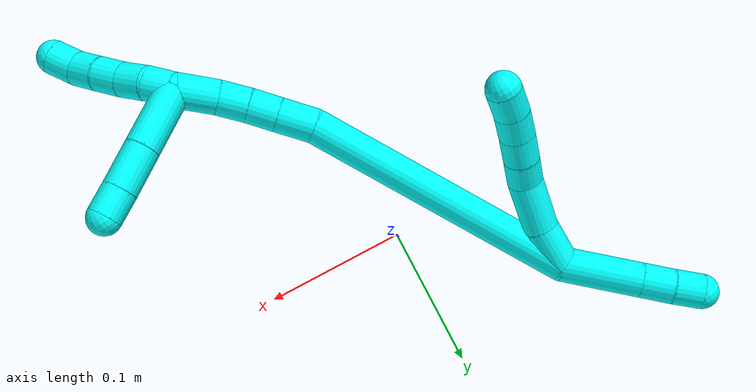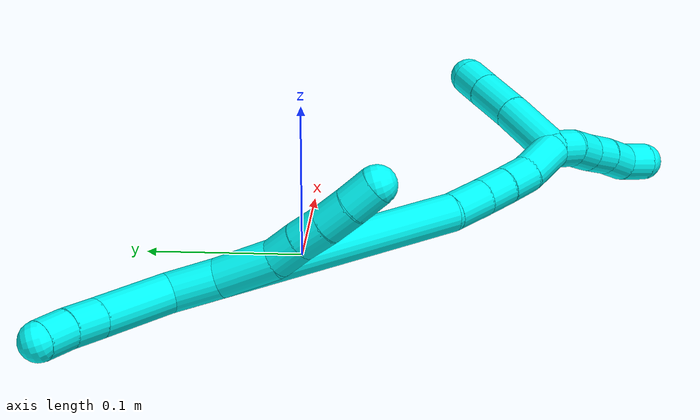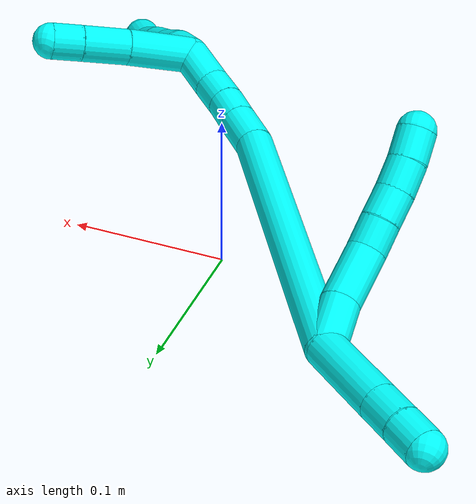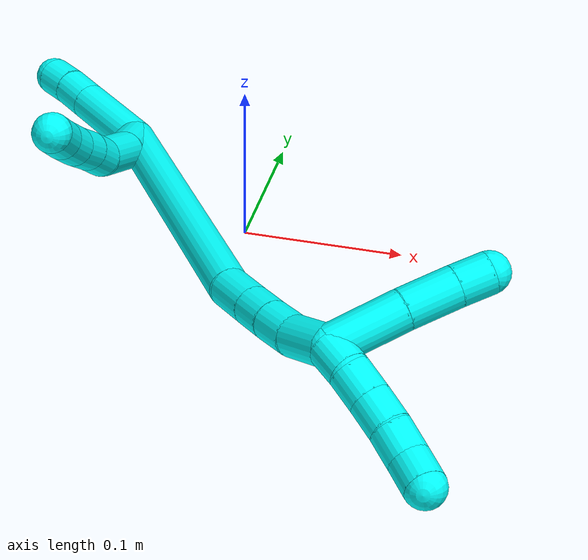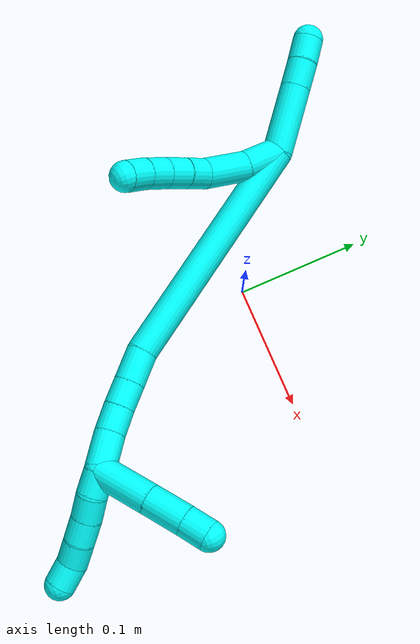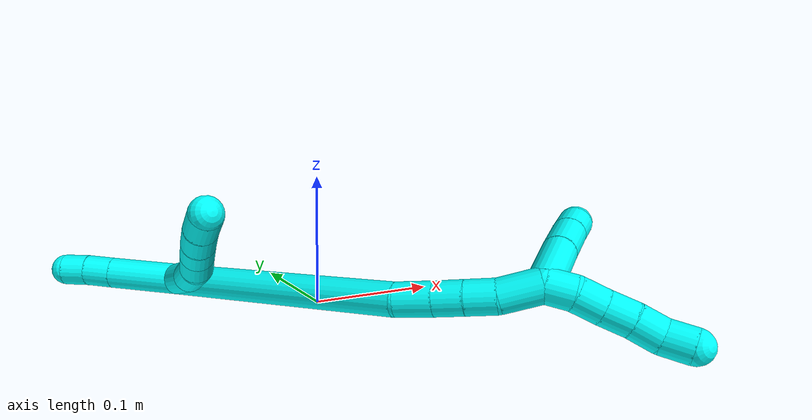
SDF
<sdf version="1.7">
 <world name="default">
  <model name="3">
   <static>0</static>
   <link name="3">
    <collision name="collision-cylinder-e_1_2_8">
     <pose>-0.000276 -6.7e-05 0.016015 0.004168 -0.017213 -3.6e-05</pose>
     <geometry><cylinder><radius>0.0125</radius><length>0.032035</length></cylinder></geometry>
     <surface>
      <friction><ode><mu>1.16</mu><mu2>1.16</mu2><slip1>0</slip1><slip2>0</slip2></ode></friction>
      <contact><ode><kp>1e+06</kp><kd>1</kd><max_vel>0</max_vel><min_depth>0.001</min_depth></ode></contact>
     </surface>
    </collision>
    <visual name="visual-cylinder-e_1_2_8">
     <pose>-0.000276 -6.7e-05 0.016015 0.004168 -0.017213 -3.6e-05</pose>
     <geometry><cylinder><radius>0.0125</radius><length>0.032035</length></cylinder></geometry>
     <material><ambient>0.003922 1 0.996078 1</ambient></material>
    </visual>
    <collision name="collision-cylinder-e_2_8_9">
     <pose>-0.002857 0.002992 0.050608 -0.166678 -0.121778 0.010185</pose>
     <geometry><cylinder><radius>0.0125</radius><length>0.03796</length></cylinder></geometry>
     <surface>
      <friction><ode><mu>1.16</mu><mu2>1.16</mu2><slip1>0</slip1><slip2>0</slip2></ode></friction>
      <contact><ode><kp>1e+06</kp><kd>1</kd><max_vel>0</max_vel><min_depth>0.001</min_depth></ode></contact>
     </surface>
    </collision>
    <visual name="visual-cylinder-e_2_8_9">
     <pose>-0.002857 0.002992 0.050608 -0.166678 -0.121778 0.010185</pose>
     <geometry><cylinder><radius>0.0125</radius><length>0.03796</length></cylinder></geometry>
     <material><ambient>0.003922 1 0.996078 1</ambient></material>
    </visual>
    <collision name="collision-cylinder-e_3_9_10">
     <pose>-0.005532 0.010649 0.078095 -0.470546 -0.036891 0.008844</pose>
     <geometry><cylinder><radius>0.0125</radius><length>0.020003</length></cylinder></geometry>
     <surface>
      <friction><ode><mu>1.16</mu><mu2>1.16</mu2><slip1>0</slip1><slip2>0</slip2></ode></friction>
      <contact><ode><kp>1e+06</kp><kd>1</kd><max_vel>0</max_vel><min_depth>0.001</min_depth></ode></contact>
     </surface>
    </collision>
    <visual name="visual-cylinder-e_3_9_10">
     <pose>-0.005532 0.010649 0.078095 -0.470546 -0.036891 0.008844</pose>
     <geometry><cylinder><radius>0.0125</radius><length>0.020003</length></cylinder></geometry>
     <material><ambient>0.003922 1 0.996078 1</ambient></material>
    </visual>
    <collision name="collision-cylinder-e_4_10_11">
     <pose>-0.006575 0.019217 0.096129 -0.41645 -0.067454 0.014257</pose>
     <geometry><cylinder><radius>0.0125</radius><length>0.020001</length></cylinder></geometry>
     <surface>
      <friction><ode><mu>1.16</mu><mu2>1.16</mu2><slip1>0</slip1><slip2>0</slip2></ode></friction>
      <contact><ode><kp>1e+06</kp><kd>1</kd><max_vel>0</max_vel><min_depth>0.001</min_depth></ode></contact>
     </surface>
    </collision>
    <visual name="visual-cylinder-e_4_10_11">
     <pose>-0.006575 0.019217 0.096129 -0.41645 -0.067454 0.014257</pose>
     <geometry><cylinder><radius>0.0125</radius><length>0.020001</length></cylinder></geometry>
     <material><ambient>0.003922 1 0.996078 1</ambient></material>
    </visual>
    <collision name="collision-cylinder-e_5_11_12">
     <pose>-0.007221 0.027568 0.114275 -0.446139 0.002786 -0.000632</pose>
     <geometry><cylinder><radius>0.0125</radius><length>0.02</length></cylinder></geometry>
     <surface>
      <friction><ode><mu>1.16</mu><mu2>1.16</mu2><slip1>0</slip1><slip2>0</slip2></ode></friction>
      <contact><ode><kp>1e+06</kp><kd>1</kd><max_vel>0</max_vel><min_depth>0.001</min_depth></ode></contact>
     </surface>
    </collision>
    <visual name="visual-cylinder-e_5_11_12">
     <pose>-0.007221 0.027568 0.114275 -0.446139 0.002786 -0.000632</pose>
     <geometry><cylinder><radius>0.0125</radius><length>0.02</length></cylinder></geometry>
     <material><ambient>0.003922 1 0.996078 1</ambient></material>
    </visual>
    <collision name="collision-cylinder-e_6_12_6">
     <pose>-0.006258 0.035856 0.132426 -0.410466 0.093623 -0.019503</pose>
     <geometry><cylinder><radius>0.0125</radius><length>0.02</length></cylinder></geometry>
     <surface>
      <friction><ode><mu>1.16</mu><mu2>1.16</mu2><slip1>0</slip1><slip2>0</slip2></ode></friction>
      <contact><ode><kp>1e+06</kp><kd>1</kd><max_vel>0</max_vel><min_depth>0.001</min_depth></ode></contact>
     </surface>
    </collision>
    <visual name="visual-cylinder-e_6_12_6">
     <pose>-0.006258 0.035856 0.132426 -0.410466 0.093623 -0.019503</pose>
     <geometry><cylinder><radius>0.0125</radius><length>0.02</length></cylinder></geometry>
     <material><ambient>0.003922 1 0.996078 1</ambient></material>
    </visual>
    <collision name="collision-cylinder-e_1_2_13">
     <pose>-0.015497 0.014879 -0.018462 -2.46325 -0.578874 1.40211</pose>
     <geometry><cylinder><radius>0.0125</radius><length>0.056654</length></cylinder></geometry>
     <surface>
      <friction><ode><mu>1.16</mu><mu2>1.16</mu2><slip1>0</slip1><slip2>0</slip2></ode></friction>
      <contact><ode><kp>1e+06</kp><kd>1</kd><max_vel>0</max_vel><min_depth>0.001</min_depth></ode></contact>
     </surface>
    </collision>
    <visual name="visual-cylinder-e_1_2_13">
     <pose>-0.015497 0.014879 -0.018462 -2.46325 -0.578874 1.40211</pose>
     <geometry><cylinder><radius>0.0125</radius><length>0.056654</length></cylinder></geometry>
     <material><ambient>0.003922 1 0.996078 1</ambient></material>
    </visual>
    <collision name="collision-cylinder-e_2_13_14">
     <pose>-0.037165 0.035801 -0.044292 -2.45466 -0.574751 1.38127</pose>
     <geometry><cylinder><radius>0.0125</radius><length>0.022703</length></cylinder></geometry>
     <surface>
      <friction><ode><mu>1.16</mu><mu2>1.16</mu2><slip1>0</slip1><slip2>0</slip2></ode></friction>
      <contact><ode><kp>1e+06</kp><kd>1</kd><max_vel>0</max_vel><min_depth>0.001</min_depth></ode></contact>
     </surface>
    </collision>
    <visual name="visual-cylinder-e_2_13_14">
     <pose>-0.037165 0.035801 -0.044292 -2.45466 -0.574751 1.38127</pose>
     <geometry><cylinder><radius>0.0125</radius><length>0.022703</length></cylinder></geometry>
     <material><ambient>0.003922 1 0.996078 1</ambient></material>
    </visual>
    <collision name="collision-cylinder-e_3_14_5">
     <pose>-0.049433 0.046829 -0.058329 -2.49968 -0.631917 1.55399</pose>
     <geometry><cylinder><radius>0.0125</radius><length>0.020643</length></cylinder></geometry>
     <surface>
      <friction><ode><mu>1.16</mu><mu2>1.16</mu2><slip1>0</slip1><slip2>0</slip2></ode></friction>
      <contact><ode><kp>1e+06</kp><kd>1</kd><max_vel>0</max_vel><min_depth>0.001</min_depth></ode></contact>
     </surface>
    </collision>
    <visual name="visual-cylinder-e_3_14_5">
     <pose>-0.049433 0.046829 -0.058329 -2.49968 -0.631917 1.55399</pose>
     <geometry><cylinder><radius>0.0125</radius><length>0.020643</length></cylinder></geometry>
     <material><ambient>0.003922 1 0.996078 1</ambient></material>
    </visual>
    <collision name="collision-cylinder-e_1_2_15">
     <pose>0.033958 -0.03879 0.085429 0.426225 0.347273 0.075877</pose>
     <geometry><cylinder><radius>0.0125</radius><length>0.199558</length></cylinder></geometry>
     <surface>
      <friction><ode><mu>1.16</mu><mu2>1.16</mu2><slip1>0</slip1><slip2>0</slip2></ode></friction>
      <contact><ode><kp>1e+06</kp><kd>1</kd><max_vel>0</max_vel><min_depth>0.001</min_depth></ode></contact>
     </surface>
    </collision>
    <visual name="visual-cylinder-e_1_2_15">
     <pose>0.033958 -0.03879 0.085429 0.426225 0.347273 0.075877</pose>
     <geometry><cylinder><radius>0.0125</radius><length>0.199558</length></cylinder></geometry>
     <material><ambient>0.003922 1 0.996078 1</ambient></material>
    </visual>
    <collision name="collision-cylinder-e_2_15_16">
     <pose>0.07513 -0.082777 0.181083 0.470232 0.561404 0.13791</pose>
     <geometry><cylinder><radius>0.0125</radius><length>0.027101</length></cylinder></geometry>
     <surface>
      <friction><ode><mu>1.16</mu><mu2>1.16</mu2><slip1>0</slip1><slip2>0</slip2></ode></friction>
      <contact><ode><kp>1e+06</kp><kd>1</kd><max_vel>0</max_vel><min_depth>0.001</min_depth></ode></contact>
     </surface>
    </collision>
    <visual name="visual-cylinder-e_2_15_16">
     <pose>0.07513 -0.082777 0.181083 0.470232 0.561404 0.13791</pose>
     <geometry><cylinder><radius>0.0125</radius><length>0.027101</length></cylinder></geometry>
     <material><ambient>0.003922 1 0.996078 1</ambient></material>
    </visual>
    <collision name="collision-cylinder-e_3_16_17">
     <pose>0.087983 -0.09182 0.1993 0.448584 0.566268 0.132555</pose>
     <geometry><cylinder><radius>0.0125</radius><length>0.021019</length></cylinder></geometry>
     <surface>
      <friction><ode><mu>1.16</mu><mu2>1.16</mu2><slip1>0</slip1><slip2>0</slip2></ode></friction>
      <contact><ode><kp>1e+06</kp><kd>1</kd><max_vel>0</max_vel><min_depth>0.001</min_depth></ode></contact>
     </surface>
    </collision>
    <visual name="visual-cylinder-e_3_16_17">
     <pose>0.087983 -0.09182 0.1993 0.448584 0.566268 0.132555</pose>
     <geometry><cylinder><radius>0.0125</radius><length>0.021019</length></cylinder></geometry>
     <material><ambient>0.003922 1 0.996078 1</ambient></material>
    </visual>
    <collision name="collision-cylinder-e_4_17_18">
     <pose>0.099903 -0.099877 0.215279 0.485136 0.6079 0.154918</pose>
     <geometry><cylinder><radius>0.0125</radius><length>0.021999</length></cylinder></geometry>
     <surface>
      <friction><ode><mu>1.16</mu><mu2>1.16</mu2><slip1>0</slip1><slip2>0</slip2></ode></friction>
      <contact><ode><kp>1e+06</kp><kd>1</kd><max_vel>0</max_vel><min_depth>0.001</min_depth></ode></contact>
     </surface>
    </collision>
    <visual name="visual-cylinder-e_4_17_18">
     <pose>0.099903 -0.099877 0.215279 0.485136 0.6079 0.154918</pose>
     <geometry><cylinder><radius>0.0125</radius><length>0.021999</length></cylinder></geometry>
     <material><ambient>0.003922 1 0.996078 1</ambient></material>
    </visual>
    <collision name="collision-cylinder-e_5_18_1">
     <pose>0.116668 -0.107331 0.233728 0.300625 0.763432 0.121439</pose>
     <geometry><cylinder><radius>0.0125</radius><length>0.030323</length></cylinder></geometry>
     <surface>
      <friction><ode><mu>1.16</mu><mu2>1.16</mu2><slip1>0</slip1><slip2>0</slip2></ode></friction>
      <contact><ode><kp>1e+06</kp><kd>1</kd><max_vel>0</max_vel><min_depth>0.001</min_depth></ode></contact>
     </surface>
    </collision>
    <visual name="visual-cylinder-e_5_18_1">
     <pose>0.116668 -0.107331 0.233728 0.300625 0.763432 0.121439</pose>
     <geometry><cylinder><radius>0.0125</radius><length>0.030323</length></cylinder></geometry>
     <material><ambient>0.003922 1 0.996078 1</ambient></material>
    </visual>
    <collision name="collision-cylinder-e_1_1_19">
     <pose>0.148493 -0.109784 0.234866 -3.05699 1.15756 -3.01222</pose>
     <geometry><cylinder><radius>0.0125</radius><length>0.046608</length></cylinder></geometry>
     <surface>
      <friction><ode><mu>1.16</mu><mu2>1.16</mu2><slip1>0</slip1><slip2>0</slip2></ode></friction>
      <contact><ode><kp>1e+06</kp><kd>1</kd><max_vel>0</max_vel><min_depth>0.001</min_depth></ode></contact>
     </surface>
    </collision>
    <visual name="visual-cylinder-e_1_1_19">
     <pose>0.148493 -0.109784 0.234866 -3.05699 1.15756 -3.01222</pose>
     <geometry><cylinder><radius>0.0125</radius><length>0.046608</length></cylinder></geometry>
     <material><ambient>0.003922 1 0.996078 1</ambient></material>
    </visual>
    <collision name="collision-cylinder-e_2_19_20">
     <pose>0.184546 -0.109188 0.218821 3.1126 1.14214 3.09648</pose>
     <geometry><cylinder><radius>0.0125</radius><length>0.032348</length></cylinder></geometry>
     <surface>
      <friction><ode><mu>1.16</mu><mu2>1.16</mu2><slip1>0</slip1><slip2>0</slip2></ode></friction>
      <contact><ode><kp>1e+06</kp><kd>1</kd><max_vel>0</max_vel><min_depth>0.001</min_depth></ode></contact>
     </surface>
    </collision>
    <visual name="visual-cylinder-e_2_19_20">
     <pose>0.184546 -0.109188 0.218821 3.1126 1.14214 3.09648</pose>
     <geometry><cylinder><radius>0.0125</radius><length>0.032348</length></cylinder></geometry>
     <material><ambient>0.003922 1 0.996078 1</ambient></material>
    </visual>
    <collision name="collision-cylinder-e_3_20_4">
     <pose>0.208875 -0.109809 0.207856 3.04156 1.15331 2.98796</pose>
     <geometry><cylinder><radius>0.0125</radius><length>0.021044</length></cylinder></geometry>
     <surface>
      <friction><ode><mu>1.16</mu><mu2>1.16</mu2><slip1>0</slip1><slip2>0</slip2></ode></friction>
      <contact><ode><kp>1e+06</kp><kd>1</kd><max_vel>0</max_vel><min_depth>0.001</min_depth></ode></contact>
     </surface>
    </collision>
    <visual name="visual-cylinder-e_3_20_4">
     <pose>0.208875 -0.109809 0.207856 3.04156 1.15331 2.98796</pose>
     <geometry><cylinder><radius>0.0125</radius><length>0.021044</length></cylinder></geometry>
     <material><ambient>0.003922 1 0.996078 1</ambient></material>
    </visual>
    <collision name="collision-cylinder-e_1_1_21">
     <pose>0.131468 -0.117116 0.250401 0.811388 0.446428 0.194385</pose>
     <geometry><cylinder><radius>0.0125</radius><length>0.02</length></cylinder></geometry>
     <surface>
      <friction><ode><mu>1.16</mu><mu2>1.16</mu2><slip1>0</slip1><slip2>0</slip2></ode></friction>
      <contact><ode><kp>1e+06</kp><kd>1</kd><max_vel>0</max_vel><min_depth>0.001</min_depth></ode></contact>
     </surface>
    </collision>
    <visual name="visual-cylinder-e_1_1_21">
     <pose>0.131468 -0.117116 0.250401 0.811388 0.446428 0.194385</pose>
     <geometry><cylinder><radius>0.0125</radius><length>0.02</length></cylinder></geometry>
     <material><ambient>0.003922 1 0.996078 1</ambient></material>
    </visual>
    <collision name="collision-cylinder-e_2_21_22">
     <pose>0.13934 -0.131751 0.261289 1.04671 0.363298 0.211182</pose>
     <geometry><cylinder><radius>0.0125</radius><length>0.02</length></cylinder></geometry>
     <surface>
      <friction><ode><mu>1.16</mu><mu2>1.16</mu2><slip1>0</slip1><slip2>0</slip2></ode></friction>
      <contact><ode><kp>1e+06</kp><kd>1</kd><max_vel>0</max_vel><min_depth>0.001</min_depth></ode></contact>
     </surface>
    </collision>
    <visual name="visual-cylinder-e_2_21_22">
     <pose>0.13934 -0.131751 0.261289 1.04671 0.363298 0.211182</pose>
     <geometry><cylinder><radius>0.0125</radius><length>0.02</length></cylinder></geometry>
     <material><ambient>0.003922 1 0.996078 1</ambient></material>
    </visual>
    <collision name="collision-cylinder-e_3_22_23">
     <pose>0.146305 -0.147486 0.271438 0.949409 0.34817 0.180264</pose>
     <geometry><cylinder><radius>0.0125</radius><length>0.02</length></cylinder></geometry>
     <surface>
      <friction><ode><mu>1.16</mu><mu2>1.16</mu2><slip1>0</slip1><slip2>0</slip2></ode></friction>
      <contact><ode><kp>1e+06</kp><kd>1</kd><max_vel>0</max_vel><min_depth>0.001</min_depth></ode></contact>
     </surface>
    </collision>
    <visual name="visual-cylinder-e_3_22_23">
     <pose>0.146305 -0.147486 0.271438 0.949409 0.34817 0.180264</pose>
     <geometry><cylinder><radius>0.0125</radius><length>0.02</length></cylinder></geometry>
     <material><ambient>0.003922 1 0.996078 1</ambient></material>
    </visual>
    <collision name="collision-cylinder-e_4_23_24">
     <pose>0.152466 -0.163348 0.281899 1.0253 0.278561 0.157482</pose>
     <geometry><cylinder><radius>0.0125</radius><length>0.02</length></cylinder></geometry>
     <surface>
      <friction><ode><mu>1.16</mu><mu2>1.16</mu2><slip1>0</slip1><slip2>0</slip2></ode></friction>
      <contact><ode><kp>1e+06</kp><kd>1</kd><max_vel>0</max_vel><min_depth>0.001</min_depth></ode></contact>
     </surface>
    </collision>
    <visual name="visual-cylinder-e_4_23_24">
     <pose>0.152466 -0.163348 0.281899 1.0253 0.278561 0.157482</pose>
     <geometry><cylinder><radius>0.0125</radius><length>0.02</length></cylinder></geometry>
     <material><ambient>0.003922 1 0.996078 1</ambient></material>
    </visual>
    <collision name="collision-cylinder-e_5_24_3">
     <pose>0.158143 -0.177716 0.294211 0.698389 0.297084 0.108868</pose>
     <geometry><cylinder><radius>0.0125</radius><length>0.02</length></cylinder></geometry>
     <surface>
      <friction><ode><mu>1.16</mu><mu2>1.16</mu2><slip1>0</slip1><slip2>0</slip2></ode></friction>
      <contact><ode><kp>1e+06</kp><kd>1</kd><max_vel>0</max_vel><min_depth>0.001</min_depth></ode></contact>
     </surface>
    </collision>
    <visual name="visual-cylinder-e_5_24_3">
     <pose>0.158143 -0.177716 0.294211 0.698389 0.297084 0.108868</pose>
     <geometry><cylinder><radius>0.0125</radius><length>0.02</length></cylinder></geometry>
     <material><ambient>0.003922 1 0.996078 1</ambient></material>
    </visual>
    <collision name="collision-sphere-3">
     <pose>0.161071 -0.183864 0.301534 0 -0 0</pose>
     <geometry><sphere><radius>0.0125</radius></sphere></geometry>
     <surface>
      <friction><ode><mu>1.16</mu><mu2>1.16</mu2><slip1>0</slip1><slip2>0</slip2></ode></friction>
      <contact><ode><kp>1e+06</kp><kd>1</kd><max_vel>0</max_vel><min_depth>0.001</min_depth></ode></contact>
     </surface>
    </collision>
    <visual name="visual-sphere-3">
     <pose>0.161071 -0.183864 0.301534 0 -0 0</pose>
     <geometry><sphere><radius>0.0125</radius></sphere></geometry>
     <material><ambient>0.003922 1 0.996078 1</ambient></material>
    </visual>
    <collision name="collision-sphere-24">
     <pose>0.155216 -0.171568 0.286888 0 -0 0</pose>
     <geometry><sphere><radius>0.0125</radius></sphere></geometry>
     <surface>
      <friction><ode><mu>1.16</mu><mu2>1.16</mu2><slip1>0</slip1><slip2>0</slip2></ode></friction>
      <contact><ode><kp>1e+06</kp><kd>1</kd><max_vel>0</max_vel><min_depth>0.001</min_depth></ode></contact>
     </surface>
    </collision>
    <visual name="visual-sphere-24">
     <pose>0.155216 -0.171568 0.286888 0 -0 0</pose>
     <geometry><sphere><radius>0.0125</radius></sphere></geometry>
     <material><ambient>0.003922 1 0.996078 1</ambient></material>
    </visual>
    <collision name="collision-sphere-23">
     <pose>0.149717 -0.155129 0.276911 0 -0 0</pose>
     <geometry><sphere><radius>0.0125</radius></sphere></geometry>
     <surface>
      <friction><ode><mu>1.16</mu><mu2>1.16</mu2><slip1>0</slip1><slip2>0</slip2></ode></friction>
      <contact><ode><kp>1e+06</kp><kd>1</kd><max_vel>0</max_vel><min_depth>0.001</min_depth></ode></contact>
     </surface>
    </collision>
    <visual name="visual-sphere-23">
     <pose>0.149717 -0.155129 0.276911 0 -0 0</pose>
     <geometry><sphere><radius>0.0125</radius></sphere></geometry>
     <material><ambient>0.003922 1 0.996078 1</ambient></material>
    </visual>
    <collision name="collision-sphere-22">
     <pose>0.142893 -0.139843 0.265966 0 -0 0</pose>
     <geometry><sphere><radius>0.0125</radius></sphere></geometry>
     <surface>
      <friction><ode><mu>1.16</mu><mu2>1.16</mu2><slip1>0</slip1><slip2>0</slip2></ode></friction>
      <contact><ode><kp>1e+06</kp><kd>1</kd><max_vel>0</max_vel><min_depth>0.001</min_depth></ode></contact>
     </surface>
    </collision>
    <visual name="visual-sphere-22">
     <pose>0.142893 -0.139843 0.265966 0 -0 0</pose>
     <geometry><sphere><radius>0.0125</radius></sphere></geometry>
     <material><ambient>0.003922 1 0.996078 1</ambient></material>
    </visual>
    <collision name="collision-sphere-21">
     <pose>0.135786 -0.123658 0.256611 0 -0 0</pose>
     <geometry><sphere><radius>0.0125</radius></sphere></geometry>
     <surface>
      <friction><ode><mu>1.16</mu><mu2>1.16</mu2><slip1>0</slip1><slip2>0</slip2></ode></friction>
      <contact><ode><kp>1e+06</kp><kd>1</kd><max_vel>0</max_vel><min_depth>0.001</min_depth></ode></contact>
     </surface>
    </collision>
    <visual name="visual-sphere-21">
     <pose>0.135786 -0.123658 0.256611 0 -0 0</pose>
     <geometry><sphere><radius>0.0125</radius></sphere></geometry>
     <material><ambient>0.003922 1 0.996078 1</ambient></material>
    </visual>
    <collision name="collision-sphere-4">
     <pose>0.218494 -0.110235 0.203611 0 -0 0</pose>
     <geometry><sphere><radius>0.0125</radius></sphere></geometry>
     <surface>
      <friction><ode><mu>1.16</mu><mu2>1.16</mu2><slip1>0</slip1><slip2>0</slip2></ode></friction>
      <contact><ode><kp>1e+06</kp><kd>1</kd><max_vel>0</max_vel><min_depth>0.001</min_depth></ode></contact>
     </surface>
    </collision>
    <visual name="visual-sphere-4">
     <pose>0.218494 -0.110235 0.203611 0 -0 0</pose>
     <geometry><sphere><radius>0.0125</radius></sphere></geometry>
     <material><ambient>0.003922 1 0.996078 1</ambient></material>
    </visual>
    <collision name="collision-sphere-20">
     <pose>0.199257 -0.109383 0.212101 0 -0 0</pose>
     <geometry><sphere><radius>0.0125</radius></sphere></geometry>
     <surface>
      <friction><ode><mu>1.16</mu><mu2>1.16</mu2><slip1>0</slip1><slip2>0</slip2></ode></friction>
      <contact><ode><kp>1e+06</kp><kd>1</kd><max_vel>0</max_vel><min_depth>0.001</min_depth></ode></contact>
     </surface>
    </collision>
    <visual name="visual-sphere-20">
     <pose>0.199257 -0.109383 0.212101 0 -0 0</pose>
     <geometry><sphere><radius>0.0125</radius></sphere></geometry>
     <material><ambient>0.003922 1 0.996078 1</ambient></material>
    </visual>
    <collision name="collision-sphere-12">
     <pose>-0.007193 0.031883 0.123297 0 -0 0</pose>
     <geometry><sphere><radius>0.0125</radius></sphere></geometry>
     <surface>
      <friction><ode><mu>1.16</mu><mu2>1.16</mu2><slip1>0</slip1><slip2>0</slip2></ode></friction>
      <contact><ode><kp>1e+06</kp><kd>1</kd><max_vel>0</max_vel><min_depth>0.001</min_depth></ode></contact>
     </surface>
    </collision>
    <visual name="visual-sphere-12">
     <pose>-0.007193 0.031883 0.123297 0 -0 0</pose>
     <geometry><sphere><radius>0.0125</radius></sphere></geometry>
     <material><ambient>0.003922 1 0.996078 1</ambient></material>
    </visual>
    <collision name="collision-sphere-11">
     <pose>-0.007249 0.023253 0.105254 0 -0 0</pose>
     <geometry><sphere><radius>0.0125</radius></sphere></geometry>
     <surface>
      <friction><ode><mu>1.16</mu><mu2>1.16</mu2><slip1>0</slip1><slip2>0</slip2></ode></friction>
      <contact><ode><kp>1e+06</kp><kd>1</kd><max_vel>0</max_vel><min_depth>0.001</min_depth></ode></contact>
     </surface>
    </collision>
    <visual name="visual-sphere-11">
     <pose>-0.007249 0.023253 0.105254 0 -0 0</pose>
     <geometry><sphere><radius>0.0125</radius></sphere></geometry>
     <material><ambient>0.003922 1 0.996078 1</ambient></material>
    </visual>
    <collision name="collision-sphere-10">
     <pose>-0.0059 0.015181 0.087004 0 -0 0</pose>
     <geometry><sphere><radius>0.0125</radius></sphere></geometry>
     <surface>
      <friction><ode><mu>1.16</mu><mu2>1.16</mu2><slip1>0</slip1><slip2>0</slip2></ode></friction>
      <contact><ode><kp>1e+06</kp><kd>1</kd><max_vel>0</max_vel><min_depth>0.001</min_depth></ode></contact>
     </surface>
    </collision>
    <visual name="visual-sphere-10">
     <pose>-0.0059 0.015181 0.087004 0 -0 0</pose>
     <geometry><sphere><radius>0.0125</radius></sphere></geometry>
     <material><ambient>0.003922 1 0.996078 1</ambient></material>
    </visual>
    <collision name="collision-sphere-9">
     <pose>-0.005163 0.006118 0.069187 0 -0 0</pose>
     <geometry><sphere><radius>0.0125</radius></sphere></geometry>
     <surface>
      <friction><ode><mu>1.16</mu><mu2>1.16</mu2><slip1>0</slip1><slip2>0</slip2></ode></friction>
      <contact><ode><kp>1e+06</kp><kd>1</kd><max_vel>0</max_vel><min_depth>0.001</min_depth></ode></contact>
     </surface>
    </collision>
    <visual name="visual-sphere-9">
     <pose>-0.005163 0.006118 0.069187 0 -0 0</pose>
     <geometry><sphere><radius>0.0125</radius></sphere></geometry>
     <material><ambient>0.003922 1 0.996078 1</ambient></material>
    </visual>
    <collision name="collision-sphere-2">
     <geometry><sphere><radius>0.0125</radius></sphere></geometry>
     <surface>
      <friction><ode><mu>1.16</mu><mu2>1.16</mu2><slip1>0</slip1><slip2>0</slip2></ode></friction>
      <contact><ode><kp>1e+06</kp><kd>1</kd><max_vel>0</max_vel><min_depth>0.001</min_depth></ode></contact>
     </surface>
    </collision>
    <visual name="visual-sphere-2">
     <geometry><sphere><radius>0.0125</radius></sphere></geometry>
     <material><ambient>0.003922 1 0.996078 1</ambient></material>
    </visual>
    <collision name="collision-sphere-19">
     <pose>0.169836 -0.108993 0.225541 0 -0 0</pose>
     <geometry><sphere><radius>0.0125</radius></sphere></geometry>
     <surface>
      <friction><ode><mu>1.16</mu><mu2>1.16</mu2><slip1>0</slip1><slip2>0</slip2></ode></friction>
      <contact><ode><kp>1e+06</kp><kd>1</kd><max_vel>0</max_vel><min_depth>0.001</min_depth></ode></contact>
     </surface>
    </collision>
    <visual name="visual-sphere-19">
     <pose>0.169836 -0.108993 0.225541 0 -0 0</pose>
     <geometry><sphere><radius>0.0125</radius></sphere></geometry>
     <material><ambient>0.003922 1 0.996078 1</ambient></material>
    </visual>
    <collision name="collision-sphere-8">
     <pose>-0.000551 -0.000133 0.03203 0 -0 0</pose>
     <geometry><sphere><radius>0.0125</radius></sphere></geometry>
     <surface>
      <friction><ode><mu>1.16</mu><mu2>1.16</mu2><slip1>0</slip1><slip2>0</slip2></ode></friction>
      <contact><ode><kp>1e+06</kp><kd>1</kd><max_vel>0</max_vel><min_depth>0.001</min_depth></ode></contact>
     </surface>
    </collision>
    <visual name="visual-sphere-8">
     <pose>-0.000551 -0.000133 0.03203 0 -0 0</pose>
     <geometry><sphere><radius>0.0125</radius></sphere></geometry>
     <material><ambient>0.003922 1 0.996078 1</ambient></material>
    </visual>
    <collision name="collision-sphere-6">
     <pose>-0.005323 0.039829 0.141555 0 -0 0</pose>
     <geometry><sphere><radius>0.0125</radius></sphere></geometry>
     <surface>
      <friction><ode><mu>1.16</mu><mu2>1.16</mu2><slip1>0</slip1><slip2>0</slip2></ode></friction>
      <contact><ode><kp>1e+06</kp><kd>1</kd><max_vel>0</max_vel><min_depth>0.001</min_depth></ode></contact>
     </surface>
    </collision>
    <visual name="visual-sphere-6">
     <pose>-0.005323 0.039829 0.141555 0 -0 0</pose>
     <geometry><sphere><radius>0.0125</radius></sphere></geometry>
     <material><ambient>0.003922 1 0.996078 1</ambient></material>
    </visual>
    <collision name="collision-sphere-13">
     <pose>-0.030994 0.029759 -0.036925 0 -0 0</pose>
     <geometry><sphere><radius>0.0125</radius></sphere></geometry>
     <surface>
      <friction><ode><mu>1.16</mu><mu2>1.16</mu2><slip1>0</slip1><slip2>0</slip2></ode></friction>
      <contact><ode><kp>1e+06</kp><kd>1</kd><max_vel>0</max_vel><min_depth>0.001</min_depth></ode></contact>
     </surface>
    </collision>
    <visual name="visual-sphere-13">
     <pose>-0.030994 0.029759 -0.036925 0 -0 0</pose>
     <geometry><sphere><radius>0.0125</radius></sphere></geometry>
     <material><ambient>0.003922 1 0.996078 1</ambient></material>
    </visual>
    <collision name="collision-sphere-14">
     <pose>-0.043336 0.041843 -0.051658 0 -0 0</pose>
     <geometry><sphere><radius>0.0125</radius></sphere></geometry>
     <surface>
      <friction><ode><mu>1.16</mu><mu2>1.16</mu2><slip1>0</slip1><slip2>0</slip2></ode></friction>
      <contact><ode><kp>1e+06</kp><kd>1</kd><max_vel>0</max_vel><min_depth>0.001</min_depth></ode></contact>
     </surface>
    </collision>
    <visual name="visual-sphere-14">
     <pose>-0.043336 0.041843 -0.051658 0 -0 0</pose>
     <geometry><sphere><radius>0.0125</radius></sphere></geometry>
     <material><ambient>0.003922 1 0.996078 1</ambient></material>
    </visual>
    <collision name="collision-sphere-5">
     <pose>-0.05553 0.051816 -0.065 0 -0 0</pose>
     <geometry><sphere><radius>0.0125</radius></sphere></geometry>
     <surface>
      <friction><ode><mu>1.16</mu><mu2>1.16</mu2><slip1>0</slip1><slip2>0</slip2></ode></friction>
      <contact><ode><kp>1e+06</kp><kd>1</kd><max_vel>0</max_vel><min_depth>0.001</min_depth></ode></contact>
     </surface>
    </collision>
    <visual name="visual-sphere-5">
     <pose>-0.05553 0.051816 -0.065 0 -0 0</pose>
     <geometry><sphere><radius>0.0125</radius></sphere></geometry>
     <material><ambient>0.003922 1 0.996078 1</ambient></material>
    </visual>
    <collision name="collision-sphere-15">
     <pose>0.067916 -0.077579 0.170857 0 -0 0</pose>
     <geometry><sphere><radius>0.0125</radius></sphere></geometry>
     <surface>
      <friction><ode><mu>1.16</mu><mu2>1.16</mu2><slip1>0</slip1><slip2>0</slip2></ode></friction>
      <contact><ode><kp>1e+06</kp><kd>1</kd><max_vel>0</max_vel><min_depth>0.001</min_depth></ode></contact>
     </surface>
    </collision>
    <visual name="visual-sphere-15">
     <pose>0.067916 -0.077579 0.170857 0 -0 0</pose>
     <geometry><sphere><radius>0.0125</radius></sphere></geometry>
     <material><ambient>0.003922 1 0.996078 1</ambient></material>
    </visual>
    <collision name="collision-sphere-16">
     <pose>0.082345 -0.087974 0.191309 0 -0 0</pose>
     <geometry><sphere><radius>0.0125</radius></sphere></geometry>
     <surface>
      <friction><ode><mu>1.16</mu><mu2>1.16</mu2><slip1>0</slip1><slip2>0</slip2></ode></friction>
      <contact><ode><kp>1e+06</kp><kd>1</kd><max_vel>0</max_vel><min_depth>0.001</min_depth></ode></contact>
     </surface>
    </collision>
    <visual name="visual-sphere-16">
     <pose>0.082345 -0.087974 0.191309 0 -0 0</pose>
     <geometry><sphere><radius>0.0125</radius></sphere></geometry>
     <material><ambient>0.003922 1 0.996078 1</ambient></material>
    </visual>
    <collision name="collision-sphere-17">
     <pose>0.093621 -0.095667 0.207292 0 -0 0</pose>
     <geometry><sphere><radius>0.0125</radius></sphere></geometry>
     <surface>
      <friction><ode><mu>1.16</mu><mu2>1.16</mu2><slip1>0</slip1><slip2>0</slip2></ode></friction>
      <contact><ode><kp>1e+06</kp><kd>1</kd><max_vel>0</max_vel><min_depth>0.001</min_depth></ode></contact>
     </surface>
    </collision>
    <visual name="visual-sphere-17">
     <pose>0.093621 -0.095667 0.207292 0 -0 0</pose>
     <geometry><sphere><radius>0.0125</radius></sphere></geometry>
     <material><ambient>0.003922 1 0.996078 1</ambient></material>
    </visual>
    <collision name="collision-sphere-18">
     <pose>0.106185 -0.104087 0.223265 0 -0 0</pose>
     <geometry><sphere><radius>0.0125</radius></sphere></geometry>
     <surface>
      <friction><ode><mu>1.16</mu><mu2>1.16</mu2><slip1>0</slip1><slip2>0</slip2></ode></friction>
      <contact><ode><kp>1e+06</kp><kd>1</kd><max_vel>0</max_vel><min_depth>0.001</min_depth></ode></contact>
     </surface>
    </collision>
    <visual name="visual-sphere-18">
     <pose>0.106185 -0.104087 0.223265 0 -0 0</pose>
     <geometry><sphere><radius>0.0125</radius></sphere></geometry>
     <material><ambient>0.003922 1 0.996078 1</ambient></material>
    </visual>
    <collision name="collision-sphere-1">
     <pose>0.127151 -0.110575 0.244191 0 -0 0</pose>
     <geometry><sphere><radius>0.0125</radius></sphere></geometry>
     <surface>
      <friction><ode><mu>1.16</mu><mu2>1.16</mu2><slip1>0</slip1><slip2>0</slip2></ode></friction>
      <contact><ode><kp>1e+06</kp><kd>1</kd><max_vel>0</max_vel><min_depth>0.001</min_depth></ode></contact>
     </surface>
    </collision>
    <visual name="visual-sphere-1">
     <pose>0.127151 -0.110575 0.244191 0 -0 0</pose>
     <geometry><sphere><radius>0.0125</radius></sphere></geometry>
     <material><ambient>0.003922 1 0.996078 1</ambient></material>
    </visual>
    <inertial>
     <pose>0.059823 -0.051299 0.126866 0 -0 0</pose>
     <mass>0.75</mass>
     <inertia>
      <ixx>0.000736</ixx>
      <ixy>0</ixy>
      <ixz>0</ixz>
      <iyy>0.000724</iyy>
      <iyz>0</iyz>
      <izz>4.2e-05</izz>
     </inertia>
    </inertial>
   </link>
   <pose>-0.093495 0.072249 0.01247 1.22775 -0.412089 0.226944</pose>
  </model>
 </world>
</sdf>
